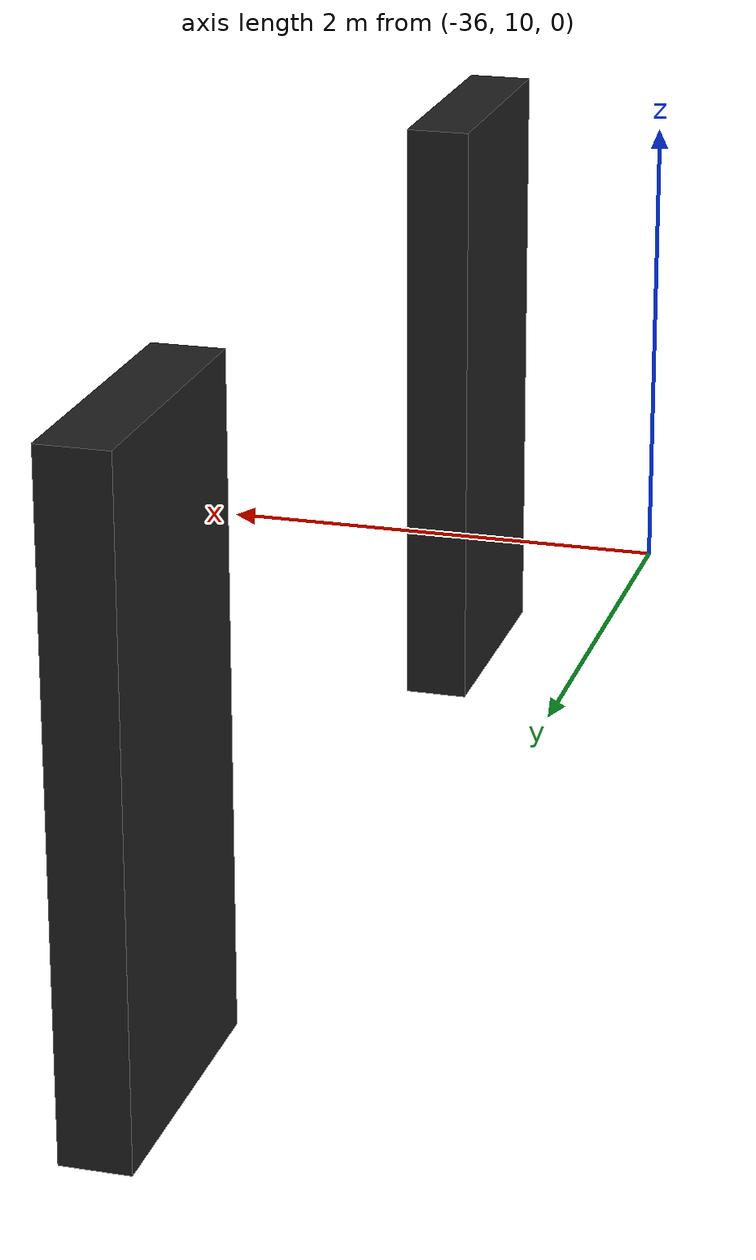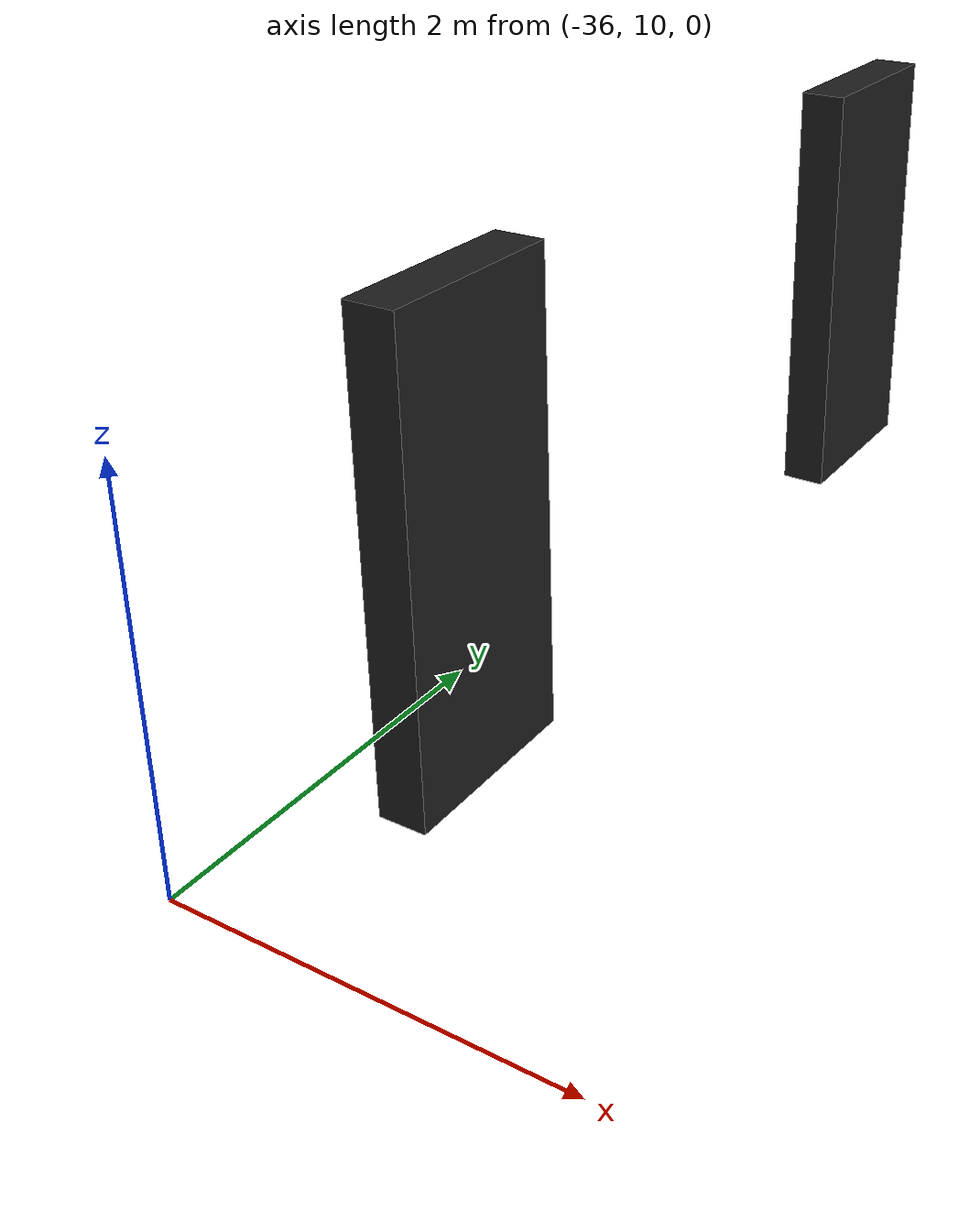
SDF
<?xml version='1.0'?>
<sdf version='1.7'>
  <model name='campus_enclosed'>
    <pose>-17.807 7.9625 0 0 -0 0</pose>
    <link name='Wall_23'>
      <collision name='Wall_23_Collision'>
        <geometry>
          <box>
            <size>1.05 0.25 2.4</size>
          </box>
        </geometry>
        <pose>0 0 1.2 0 -0 0</pose>
      </collision>
      <visual name='Wall_23_Visual'>
        <pose>0 0 1.2 0 -0 0</pose>
        <geometry>
          <box>
            <size>1.05 0.25 2.4</size>
          </box>
        </geometry>
        <material>
          <script>
            <uri>file://media/materials/scripts/gazebo.material</uri>
            <name>Gazebo/Black</name>
          </script>
          <ambient>1 1 1 1</ambient>
        </material>
        <meta>
          <layer>0</layer>
        </meta>
      </visual>
      <pose>-17.667 7.4375 0 0 -0 -1.5708</pose>
    </link>
    <link name='Wall_25'>
      <collision name='Wall_25_Collision'>
        <geometry>
          <box>
            <size>1.007 0.25 2.4</size>
          </box>
        </geometry>
        <pose>0 0 1.2 0 -0 0</pose>
      </collision>
      <visual name='Wall_25_Visual'>
        <pose>0 0 1.2 0 -0 0</pose>
        <geometry>
          <box>
            <size>1.007 0.25 2.4</size>
          </box>
        </geometry>
        <material>
          <script>
            <uri>file://media/materials/scripts/gazebo.material</uri>
            <name>Gazebo/Black</name>
          </script>
          <ambient>1 1 1 1</ambient>
        </material>
        <meta>
          <layer>0</layer>
        </meta>
      </visual>
      <pose>-17.682 3.416 0 0 -0 1.5708</pose>
    </link>
    <static>1</static>
  </model>
</sdf>
